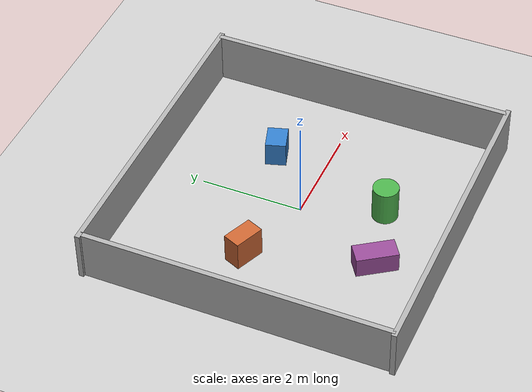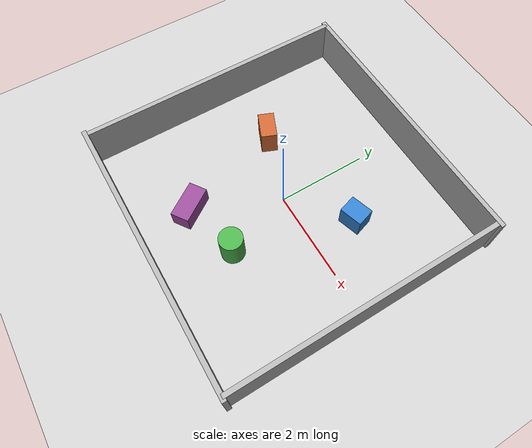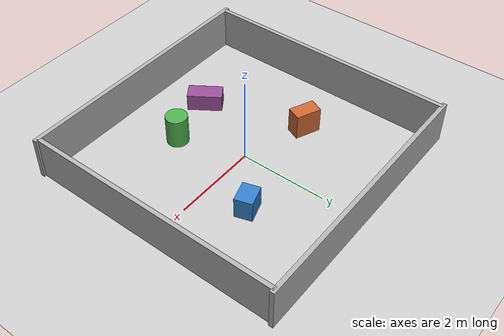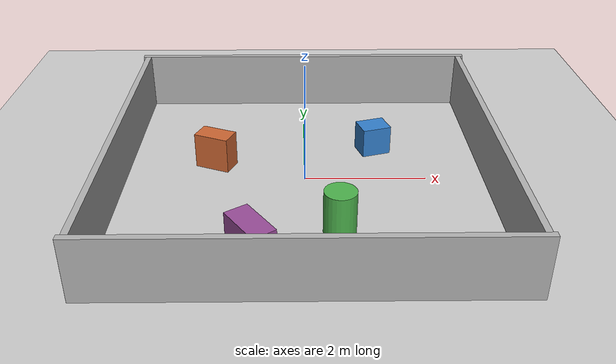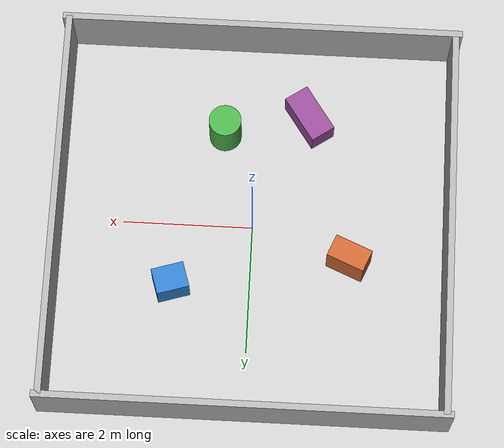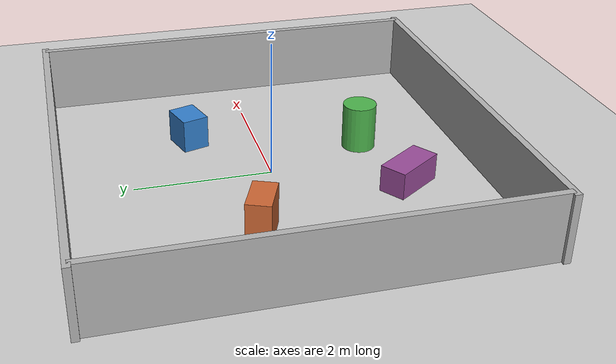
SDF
<?xml version="1.0" ?>
<sdf version="1.6">
  <world name="petbot_world">
    <!-- 内嵌地面与光照，不依赖 model:// 路径 -->
    <light name="sun" type="directional">
      <cast_shadows>true</cast_shadows>
      <pose>0 0 10 0 0 0</pose>
      <diffuse>0.8 0.8 0.8 1</diffuse>
      <specular>0.2 0.2 0.2 1</specular>
      <attenuation>
        <range>1000</range>
        <constant>0.9</constant>
        <linear>0.01</linear>
        <quadratic>0.001</quadratic>
      </attenuation>
      <direction>-0.5 0.1 -0.9</direction>
    </light>

    <model name="ground_plane">
      <static>true</static>
      <link name="link">
        <collision name="collision">
          <geometry>
            <plane><normal>0 0 1</normal><size>100 100</size></plane>
          </geometry>
          <surface>
            <friction>
              <ode><mu>100</mu><mu2>50</mu2></ode>
            </friction>
          </surface>
        </collision>
        <visual name="visual">
          <geometry>
            <plane><normal>0 0 1</normal><size>100 100</size></plane>
          </geometry>
          <material>
            <ambient>0.8 0.8 0.8 1</ambient>
            <diffuse>0.8 0.8 0.8 1</diffuse>
          </material>
        </visual>
      </link>
    </model>

    <gravity>0 0 -9.8</gravity>
    <physics type="ode">
      <max_step_size>0.001</max_step_size>
      <real_time_factor>1</real_time_factor>
      <real_time_update_rate>1000</real_time_update_rate>
    </physics>

    <model name="wall_north">
      <static>true</static>
      <pose>0 3.0 0.5 0 0 0</pose>
      <link name="link">
        <collision name="collision">
          <geometry><box><size>6.2 0.1 1.0</size></box></geometry>
        </collision>
        <visual name="visual">
          <geometry><box><size>6.2 0.1 1.0</size></box></geometry>
          <material><ambient>0.7 0.7 0.7 1</ambient><diffuse>0.7 0.7 0.7 1</diffuse></material>
        </visual>
      </link>
    </model>
    <model name="wall_south">
      <static>true</static>
      <pose>0 -3.0 0.5 0 0 0</pose>
      <link name="link">
        <collision name="collision">
          <geometry><box><size>6.2 0.1 1.0</size></box></geometry>
        </collision>
        <visual name="visual">
          <geometry><box><size>6.2 0.1 1.0</size></box></geometry>
          <material><ambient>0.7 0.7 0.7 1</ambient><diffuse>0.7 0.7 0.7 1</diffuse></material>
        </visual>
      </link>
    </model>
    <model name="wall_east">
      <static>true</static>
      <pose>3.0 0 0.5 0 0 0</pose>
      <link name="link">
        <collision name="collision">
          <geometry><box><size>0.1 6.0 1.0</size></box></geometry>
        </collision>
        <visual name="visual">
          <geometry><box><size>0.1 6.0 1.0</size></box></geometry>
          <material><ambient>0.7 0.7 0.7 1</ambient><diffuse>0.7 0.7 0.7 1</diffuse></material>
        </visual>
      </link>
    </model>
    <model name="wall_west">
      <static>true</static>
      <pose>-3.0 0 0.5 0 0 0</pose>
      <link name="link">
        <collision name="collision">
          <geometry><box><size>0.1 6.0 1.0</size></box></geometry>
        </collision>
        <visual name="visual">
          <geometry><box><size>0.1 6.0 1.0</size></box></geometry>
          <material><ambient>0.7 0.7 0.7 1</ambient><diffuse>0.7 0.7 0.7 1</diffuse></material>
        </visual>
      </link>
    </model>

    <model name="box1">
      <static>true</static>
      <pose>1.2 1.0 0.25 0 0 0.3</pose>
      <link name="link">
        <collision name="collision">
          <geometry><box><size>0.5 0.4 0.5</size></box></geometry>
        </collision>
        <visual name="visual">
          <geometry><box><size>0.5 0.4 0.5</size></box></geometry>
          <material><ambient>0.2 0.5 0.8 1</ambient><diffuse>0.2 0.5 0.8 1</diffuse></material>
        </visual>
      </link>
    </model>
    <model name="box2">
      <static>true</static>
      <pose>-1.5 0.5 0.3 0 0 -0.4</pose>
      <link name="link">
        <collision name="collision">
          <geometry><box><size>0.6 0.35 0.6</size></box></geometry>
        </collision>
        <visual name="visual">
          <geometry><box><size>0.6 0.35 0.6</size></box></geometry>
          <material><ambient>0.8 0.4 0.2 1</ambient><diffuse>0.8 0.4 0.2 1</diffuse></material>
        </visual>
      </link>
    </model>
    <model name="cylinder1">
      <static>true</static>
      <pose>0.5 -1.5 0.35 0 0 0</pose>
      <link name="link">
        <collision name="collision">
          <geometry><cylinder><radius>0.25</radius><length>0.7</length></cylinder></geometry>
        </collision>
        <visual name="visual">
          <geometry><cylinder><radius>0.25</radius><length>0.7</length></cylinder></geometry>
          <material><ambient>0.3 0.7 0.3 1</ambient><diffuse>0.3 0.7 0.3 1</diffuse></material>
        </visual>
      </link>
    </model>
    <model name="box3">
      <static>true</static>
      <pose>-0.8 -1.8 0.2 0 0 0.6</pose>
      <link name="link">
        <collision name="collision">
          <geometry><box><size>0.4 0.8 0.4</size></box></geometry>
        </collision>
        <visual name="visual">
          <geometry><box><size>0.4 0.8 0.4</size></box></geometry>
          <material><ambient>0.6 0.3 0.6 1</ambient><diffuse>0.6 0.3 0.6 1</diffuse></material>
        </visual>
      </link>
    </model>

  </world>
</sdf>
